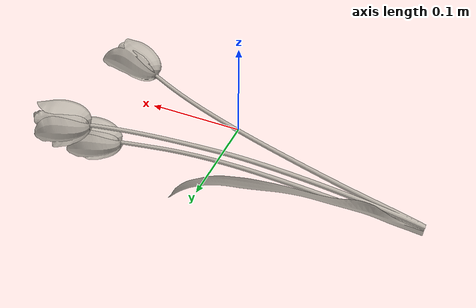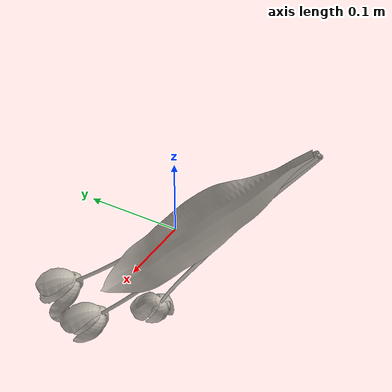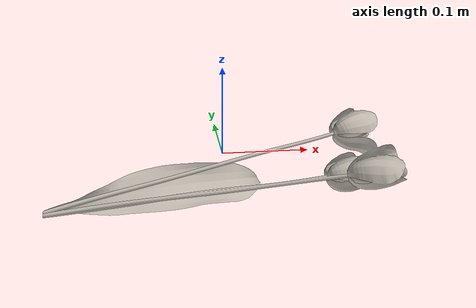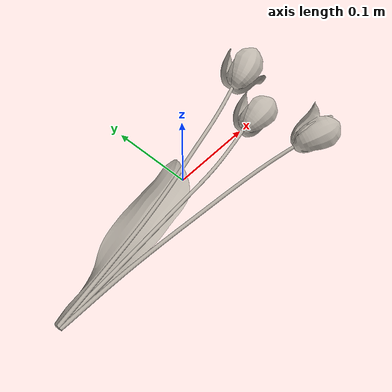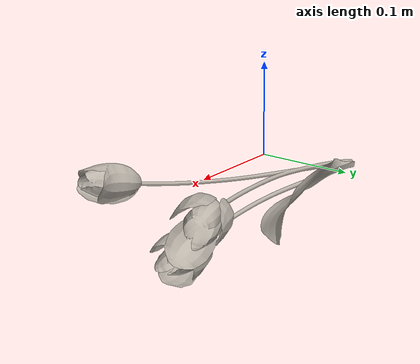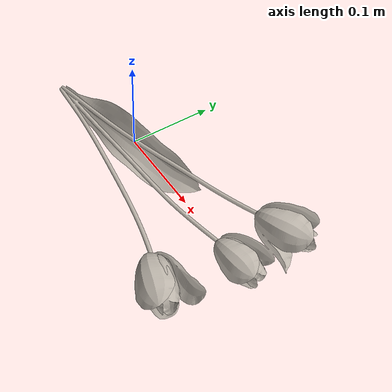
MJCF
<?xml version="1.0" ?>
<mujoco model="tulip">
	<compiler meshdir="tulip/meshes" texturedir="tulip/textures" angle="radian" autolimits="true" balanceinertia="true" boundmass="0.000001" boundinertia="0.000001"/>
	<default>
		<default class="visual">
			<geom contype="0" conaffinity="0"/>
		</default>
		<default class="collision">
			<geom rgba="1.0 0.0 0.0 0.0"/>
		</default>
	</default>
	<asset>
		<mesh name="TulipFlower002" file="obj/TulipFlower002.obj" scale="1.0 1.0 1.0"/>
		<mesh name="TulipFlower002_001" file="stl/TulipFlower002_001.stl" scale="1.0 1.0 1.0"/>
		<mesh name="TulipFlower002_002" file="stl/TulipFlower002_002.stl" scale="1.0 1.0 1.0"/>
		<mesh name="TulipFlower002_003" file="stl/TulipFlower002_003.stl" scale="1.0 1.0 1.0"/>
		<mesh name="TulipFlower002_004" file="stl/TulipFlower002_004.stl" scale="1.0 1.0 1.0"/>
		<mesh name="TulipFlower002_005" file="stl/TulipFlower002_005.stl" scale="1.0 1.0 1.0"/>
		<mesh name="TulipFlower002_006" file="stl/TulipFlower002_006.stl" scale="1.0 1.0 1.0"/>
		<mesh name="TulipFlower002_007" file="stl/TulipFlower002_007.stl" scale="1.0 1.0 1.0"/>
		<mesh name="TulipFlower002_008" file="stl/TulipFlower002_008.stl" scale="1.0 1.0 1.0"/>
		<mesh name="TulipFlower002_009" file="stl/TulipFlower002_009.stl" scale="1.0 1.0 1.0"/>
		<mesh name="TulipFlower002_010" file="stl/TulipFlower002_010.stl" scale="1.0 1.0 1.0"/>
		<mesh name="TulipFlower002_011" file="stl/TulipFlower002_011.stl" scale="1.0 1.0 1.0"/>
		<mesh name="TulipFlower002_012" file="stl/TulipFlower002_012.stl" scale="1.0 1.0 1.0"/>
		<mesh name="TulipFlower002_013" file="stl/TulipFlower002_013.stl" scale="1.0 1.0 1.0"/>
		<mesh name="TulipFlower002_014" file="stl/TulipFlower002_014.stl" scale="1.0 1.0 1.0"/>
		<mesh name="TulipFlower002_015" file="stl/TulipFlower002_015.stl" scale="1.0 1.0 1.0"/>
		<mesh name="TulipFlower002_016" file="stl/TulipFlower002_016.stl" scale="1.0 1.0 1.0"/>
		<mesh name="TulipFlower002_017" file="stl/TulipFlower002_017.stl" scale="1.0 1.0 1.0"/>
		<mesh name="TulipFlower002_018" file="stl/TulipFlower002_018.stl" scale="1.0 1.0 1.0"/>
		<mesh name="TulipFlower002_019" file="stl/TulipFlower002_019.stl" scale="1.0 1.0 1.0"/>
		<mesh name="TulipFlower002_020" file="stl/TulipFlower002_020.stl" scale="1.0 1.0 1.0"/>
		<mesh name="TulipFlower002_021" file="stl/TulipFlower002_021.stl" scale="1.0 1.0 1.0"/>
		<mesh name="TulipFlower002_022" file="stl/TulipFlower002_022.stl" scale="1.0 1.0 1.0"/>
		<mesh name="TulipFlower002_023" file="stl/TulipFlower002_023.stl" scale="1.0 1.0 1.0"/>
		<mesh name="TulipFlower002_024" file="stl/TulipFlower002_024.stl" scale="1.0 1.0 1.0"/>
		<mesh name="TulipFlower002_025" file="stl/TulipFlower002_025.stl" scale="1.0 1.0 1.0"/>
		<mesh name="TulipFlower002_026" file="stl/TulipFlower002_026.stl" scale="1.0 1.0 1.0"/>
		<mesh name="TulipFlower002_027" file="stl/TulipFlower002_027.stl" scale="1.0 1.0 1.0"/>
		<mesh name="TulipFlower002_028" file="stl/TulipFlower002_028.stl" scale="1.0 1.0 1.0"/>
		<mesh name="TulipFlower002_029" file="stl/TulipFlower002_029.stl" scale="1.0 1.0 1.0"/>
		<mesh name="TulipFlower002_030" file="stl/TulipFlower002_030.stl" scale="1.0 1.0 1.0"/>
		<mesh name="TulipFlower002_031" file="stl/TulipFlower002_031.stl" scale="1.0 1.0 1.0"/>
		<mesh name="TulipFlower002_032" file="stl/TulipFlower002_032.stl" scale="1.0 1.0 1.0"/>
		<mesh name="TulipFlower002_033" file="stl/TulipFlower002_033.stl" scale="1.0 1.0 1.0"/>
		<mesh name="TulipFlower002_034" file="stl/TulipFlower002_034.stl" scale="1.0 1.0 1.0"/>
		<mesh name="TulipFlower002_035" file="stl/TulipFlower002_035.stl" scale="1.0 1.0 1.0"/>
		<mesh name="TulipFlower002_036" file="stl/TulipFlower002_036.stl" scale="1.0 1.0 1.0"/>
		<mesh name="TulipFlower002_037" file="stl/TulipFlower002_037.stl" scale="1.0 1.0 1.0"/>
		<mesh name="TulipFlower002_038" file="stl/TulipFlower002_038.stl" scale="1.0 1.0 1.0"/>
		<mesh name="TulipFlower002_039" file="stl/TulipFlower002_039.stl" scale="1.0 1.0 1.0"/>
		<mesh name="TulipFlower002_040" file="stl/TulipFlower002_040.stl" scale="1.0 1.0 1.0"/>
		<mesh name="TulipFlower002_041" file="stl/TulipFlower002_041.stl" scale="1.0 1.0 1.0"/>
		<mesh name="TulipFlower002_042" file="stl/TulipFlower002_042.stl" scale="1.0 1.0 1.0"/>
		<mesh name="TulipFlower002_043" file="stl/TulipFlower002_043.stl" scale="1.0 1.0 1.0"/>
		<mesh name="TulipFlower002_044" file="stl/TulipFlower002_044.stl" scale="1.0 1.0 1.0"/>
		<mesh name="TulipFlower002_045" file="stl/TulipFlower002_045.stl" scale="1.0 1.0 1.0"/>
		<mesh name="TulipFlower002_046" file="stl/TulipFlower002_046.stl" scale="1.0 1.0 1.0"/>
		<mesh name="TulipFlower002_047" file="stl/TulipFlower002_047.stl" scale="1.0 1.0 1.0"/>
		<mesh name="TulipFlower002_048" file="stl/TulipFlower002_048.stl" scale="1.0 1.0 1.0"/>
		<mesh name="TulipFlower002_049" file="stl/TulipFlower002_049.stl" scale="1.0 1.0 1.0"/>
		<mesh name="TulipFlower002_050" file="stl/TulipFlower002_050.stl" scale="1.0 1.0 1.0"/>
		<mesh name="TulipFlower002_051" file="stl/TulipFlower002_051.stl" scale="1.0 1.0 1.0"/>
		<mesh name="TulipFlower002_052" file="stl/TulipFlower002_052.stl" scale="1.0 1.0 1.0"/>
		<mesh name="TulipFlower002_053" file="stl/TulipFlower002_053.stl" scale="1.0 1.0 1.0"/>
		<mesh name="TulipFlower002_054" file="stl/TulipFlower002_054.stl" scale="1.0 1.0 1.0"/>
		<mesh name="TulipFlower002_055" file="stl/TulipFlower002_055.stl" scale="1.0 1.0 1.0"/>
		<mesh name="TulipFlower002_056" file="stl/TulipFlower002_056.stl" scale="1.0 1.0 1.0"/>
		<mesh name="TulipFlower002_057" file="stl/TulipFlower002_057.stl" scale="1.0 1.0 1.0"/>
		<mesh name="TulipFlower002_058" file="stl/TulipFlower002_058.stl" scale="1.0 1.0 1.0"/>
		<mesh name="TulipStem" file="obj/TulipStem.obj" scale="1.0 1.0 1.0"/>
		<mesh name="TulipStem_001" file="stl/TulipStem_001.stl" scale="1.0 1.0 1.0"/>
		<mesh name="TulipStem_002" file="stl/TulipStem_002.stl" scale="1.0 1.0 1.0"/>
		<mesh name="TulipStem_003" file="stl/TulipStem_003.stl" scale="1.0 1.0 1.0"/>
		<mesh name="TulipStem_004" file="stl/TulipStem_004.stl" scale="1.0 1.0 1.0"/>
		<mesh name="TulipStem_005" file="stl/TulipStem_005.stl" scale="1.0 1.0 1.0"/>
		<mesh name="TulipStem_006" file="stl/TulipStem_006.stl" scale="1.0 1.0 1.0"/>
		<mesh name="TulipLeaf001" file="obj/TulipLeaf001.obj" scale="1.0 1.0 1.0"/>
		<mesh name="TulipLeaf001_001" file="stl/TulipLeaf001_001.stl" scale="1.0 1.0 1.0"/>
		<mesh name="TulipLeaf001_002" file="stl/TulipLeaf001_002.stl" scale="1.0 1.0 1.0"/>
		<mesh name="TulipLeaf001_003" file="stl/TulipLeaf001_003.stl" scale="1.0 1.0 1.0"/>
		<mesh name="TulipLeaf001_004" file="stl/TulipLeaf001_004.stl" scale="1.0 1.0 1.0"/>
		<mesh name="TulipLeaf001_005" file="stl/TulipLeaf001_005.stl" scale="1.0 1.0 1.0"/>
		<mesh name="TulipFlower001" file="obj/TulipFlower001.obj" scale="1.0 1.0 1.0"/>
		<mesh name="TulipFlower001_001" file="stl/TulipFlower001_001.stl" scale="1.0 1.0 1.0"/>
		<mesh name="TulipFlower001_002" file="stl/TulipFlower001_002.stl" scale="1.0 1.0 1.0"/>
		<mesh name="TulipFlower001_003" file="stl/TulipFlower001_003.stl" scale="1.0 1.0 1.0"/>
		<mesh name="TulipFlower001_004" file="stl/TulipFlower001_004.stl" scale="1.0 1.0 1.0"/>
		<mesh name="TulipFlower001_005" file="stl/TulipFlower001_005.stl" scale="1.0 1.0 1.0"/>
		<mesh name="TulipFlower001_006" file="stl/TulipFlower001_006.stl" scale="1.0 1.0 1.0"/>
		<mesh name="TulipFlower001_007" file="stl/TulipFlower001_007.stl" scale="1.0 1.0 1.0"/>
		<mesh name="TulipFlower001_008" file="stl/TulipFlower001_008.stl" scale="1.0 1.0 1.0"/>
		<mesh name="TulipFlower001_009" file="stl/TulipFlower001_009.stl" scale="1.0 1.0 1.0"/>
		<mesh name="TulipFlower001_010" file="stl/TulipFlower001_010.stl" scale="1.0 1.0 1.0"/>
		<mesh name="TulipFlower001_011" file="stl/TulipFlower001_011.stl" scale="1.0 1.0 1.0"/>
		<mesh name="TulipFlower001_012" file="stl/TulipFlower001_012.stl" scale="1.0 1.0 1.0"/>
		<mesh name="TulipFlower001_013" file="stl/TulipFlower001_013.stl" scale="1.0 1.0 1.0"/>
		<mesh name="TulipFlower001_014" file="stl/TulipFlower001_014.stl" scale="1.0 1.0 1.0"/>
		<mesh name="TulipFlower001_015" file="stl/TulipFlower001_015.stl" scale="1.0 1.0 1.0"/>
		<mesh name="TulipFlower001_016" file="stl/TulipFlower001_016.stl" scale="1.0 1.0 1.0"/>
		<mesh name="TulipFlower001_017" file="stl/TulipFlower001_017.stl" scale="1.0 1.0 1.0"/>
		<mesh name="TulipFlower001_018" file="stl/TulipFlower001_018.stl" scale="1.0 1.0 1.0"/>
		<mesh name="TulipFlower001_019" file="stl/TulipFlower001_019.stl" scale="1.0 1.0 1.0"/>
		<mesh name="TulipFlower001_020" file="stl/TulipFlower001_020.stl" scale="1.0 1.0 1.0"/>
		<mesh name="TulipFlower001_021" file="stl/TulipFlower001_021.stl" scale="1.0 1.0 1.0"/>
		<mesh name="TulipFlower001_022" file="stl/TulipFlower001_022.stl" scale="1.0 1.0 1.0"/>
		<mesh name="TulipFlower001_023" file="stl/TulipFlower001_023.stl" scale="1.0 1.0 1.0"/>
		<mesh name="TulipFlower001_024" file="stl/TulipFlower001_024.stl" scale="1.0 1.0 1.0"/>
		<mesh name="TulipFlower001_025" file="stl/TulipFlower001_025.stl" scale="1.0 1.0 1.0"/>
		<mesh name="TulipFlower001_026" file="stl/TulipFlower001_026.stl" scale="1.0 1.0 1.0"/>
		<mesh name="TulipFlower001_027" file="stl/TulipFlower001_027.stl" scale="1.0 1.0 1.0"/>
		<mesh name="TulipFlower001_028" file="stl/TulipFlower001_028.stl" scale="1.0 1.0 1.0"/>
		<mesh name="TulipFlower001_029" file="stl/TulipFlower001_029.stl" scale="1.0 1.0 1.0"/>
		<mesh name="TulipFlower001_030" file="stl/TulipFlower001_030.stl" scale="1.0 1.0 1.0"/>
		<mesh name="TulipFlower001_031" file="stl/TulipFlower001_031.stl" scale="1.0 1.0 1.0"/>
		<mesh name="TulipFlower001_032" file="stl/TulipFlower001_032.stl" scale="1.0 1.0 1.0"/>
		<mesh name="TulipFlower001_033" file="stl/TulipFlower001_033.stl" scale="1.0 1.0 1.0"/>
		<mesh name="TulipFlower001_034" file="stl/TulipFlower001_034.stl" scale="1.0 1.0 1.0"/>
		<mesh name="TulipFlower001_035" file="stl/TulipFlower001_035.stl" scale="1.0 1.0 1.0"/>
		<mesh name="TulipFlower001_036" file="stl/TulipFlower001_036.stl" scale="1.0 1.0 1.0"/>
		<mesh name="TulipFlower001_037" file="stl/TulipFlower001_037.stl" scale="1.0 1.0 1.0"/>
		<mesh name="TulipFlower001_038" file="stl/TulipFlower001_038.stl" scale="1.0 1.0 1.0"/>
		<mesh name="TulipFlower001_039" file="stl/TulipFlower001_039.stl" scale="1.0 1.0 1.0"/>
		<mesh name="TulipFlower001_040" file="stl/TulipFlower001_040.stl" scale="1.0 1.0 1.0"/>
		<mesh name="TulipFlower001_041" file="stl/TulipFlower001_041.stl" scale="1.0 1.0 1.0"/>
		<mesh name="TulipFlower001_042" file="stl/TulipFlower001_042.stl" scale="1.0 1.0 1.0"/>
		<mesh name="TulipFlower001_043" file="stl/TulipFlower001_043.stl" scale="1.0 1.0 1.0"/>
		<mesh name="TulipFlower001_044" file="stl/TulipFlower001_044.stl" scale="1.0 1.0 1.0"/>
		<mesh name="TulipFlower001_045" file="stl/TulipFlower001_045.stl" scale="1.0 1.0 1.0"/>
		<mesh name="TulipFlower001_046" file="stl/TulipFlower001_046.stl" scale="1.0 1.0 1.0"/>
		<mesh name="TulipFlower001_047" file="stl/TulipFlower001_047.stl" scale="1.0 1.0 1.0"/>
		<mesh name="TulipFlower001_048" file="stl/TulipFlower001_048.stl" scale="1.0 1.0 1.0"/>
		<mesh name="TulipFlower001_049" file="stl/TulipFlower001_049.stl" scale="1.0 1.0 1.0"/>
		<mesh name="TulipFlower001_050" file="stl/TulipFlower001_050.stl" scale="1.0 1.0 1.0"/>
		<mesh name="TulipFlower001_051" file="stl/TulipFlower001_051.stl" scale="1.0 1.0 1.0"/>
		<mesh name="TulipFlower001_052" file="stl/TulipFlower001_052.stl" scale="1.0 1.0 1.0"/>
		<mesh name="TulipFlower001_053" file="stl/TulipFlower001_053.stl" scale="1.0 1.0 1.0"/>
		<mesh name="TulipFlower001_054" file="stl/TulipFlower001_054.stl" scale="1.0 1.0 1.0"/>
		<mesh name="TulipFlower001_055" file="stl/TulipFlower001_055.stl" scale="1.0 1.0 1.0"/>
		<mesh name="TulipFlower001_056" file="stl/TulipFlower001_056.stl" scale="1.0 1.0 1.0"/>
		<mesh name="TulipFlower001_057" file="stl/TulipFlower001_057.stl" scale="1.0 1.0 1.0"/>
		<mesh name="TulipFlower001_058" file="stl/TulipFlower001_058.stl" scale="1.0 1.0 1.0"/>
		<mesh name="TulipFlower001_059" file="stl/TulipFlower001_059.stl" scale="1.0 1.0 1.0"/>
		<mesh name="TulipFlower001_060" file="stl/TulipFlower001_060.stl" scale="1.0 1.0 1.0"/>
		<mesh name="TulipFlower001_061" file="stl/TulipFlower001_061.stl" scale="1.0 1.0 1.0"/>
		<mesh name="TulipFlower001_062" file="stl/TulipFlower001_062.stl" scale="1.0 1.0 1.0"/>
		<mesh name="TulipFlower001_063" file="stl/TulipFlower001_063.stl" scale="1.0 1.0 1.0"/>
		<mesh name="TulipFlower001_064" file="stl/TulipFlower001_064.stl" scale="1.0 1.0 1.0"/>
		<material name="M_TulipFlower002" texture="T_TulipFlower002"/>
		<material name="M_TulipStem" texture="T_TulipStem"/>
		<material name="M_TulipLeaf001" texture="T_TulipLeaf001"/>
		<material name="M_TulipFlower001" texture="T_TulipFlower001"/>
		<texture name="T_TulipFlower002" type="2d" file="T_TulipFlower002.png"/>
		<texture name="T_TulipStem" type="2d" file="T_TulipStem.png"/>
		<texture name="T_TulipLeaf001" type="2d" file="T_TulipLeaf001.png"/>
		<texture name="T_TulipFlower001" type="2d" file="T_TulipFlower001.png"/>
	</asset>
	<worldbody>
		<body name="tulip" pos="0.0 0.0 0.0" quat="1.0 0.0 0.0 0.0">
			<body name="tulip_flower002" pos="0.0 0.0 0.0" quat="1.0 0.0 0.0 0.0">
				<inertial mass="-0.035850219428539276" pos="-0.0035837735049426556 -0.0010592726757749915 8.421168604400009e-05" quat="0.8195626735687256 -0.5482896566390991 -0.08903547376394272 0.14059945940971375" diaginertia="-1.3038647921348456e-06 1.3964859135739971e-05 1.5146362784435041e-05"/>
				<geom name="TulipFlower002" type="mesh" pos="0.0 0.0 0.0" quat="1.0 0.0 0.0 0.0" mesh="TulipFlower002" material="M_TulipFlower002" class="visual"/>
				<geom name="TulipFlower002_001" type="mesh" pos="0.0 0.0 0.0" quat="1.0 0.0 0.0 0.0" mesh="TulipFlower002_001" class="collision"/>
				<geom name="TulipFlower002_002" type="mesh" pos="0.0 0.0 0.0" quat="1.0 0.0 0.0 0.0" mesh="TulipFlower002_002" class="collision"/>
				<geom name="TulipFlower002_003" type="mesh" pos="0.0 0.0 0.0" quat="1.0 0.0 0.0 0.0" mesh="TulipFlower002_003" class="collision"/>
				<geom name="TulipFlower002_004" type="mesh" pos="0.0 0.0 0.0" quat="1.0 0.0 0.0 0.0" mesh="TulipFlower002_004" class="collision"/>
				<geom name="TulipFlower002_005" type="mesh" pos="0.0 0.0 0.0" quat="1.0 0.0 0.0 0.0" mesh="TulipFlower002_005" class="collision"/>
				<geom name="TulipFlower002_006" type="mesh" pos="0.0 0.0 0.0" quat="1.0 0.0 0.0 0.0" mesh="TulipFlower002_006" class="collision"/>
				<geom name="TulipFlower002_007" type="mesh" pos="0.0 0.0 0.0" quat="1.0 0.0 0.0 0.0" mesh="TulipFlower002_007" class="collision"/>
				<geom name="TulipFlower002_008" type="mesh" pos="0.0 0.0 0.0" quat="1.0 0.0 0.0 0.0" mesh="TulipFlower002_008" class="collision"/>
				<geom name="TulipFlower002_009" type="mesh" pos="0.0 0.0 0.0" quat="1.0 0.0 0.0 0.0" mesh="TulipFlower002_009" class="collision"/>
				<geom name="TulipFlower002_010" type="mesh" pos="0.0 0.0 0.0" quat="1.0 0.0 0.0 0.0" mesh="TulipFlower002_010" class="collision"/>
				<geom name="TulipFlower002_011" type="mesh" pos="0.0 0.0 0.0" quat="1.0 0.0 0.0 0.0" mesh="TulipFlower002_011" class="collision"/>
				<geom name="TulipFlower002_012" type="mesh" pos="0.0 0.0 0.0" quat="1.0 0.0 0.0 0.0" mesh="TulipFlower002_012" class="collision"/>
				<geom name="TulipFlower002_013" type="mesh" pos="0.0 0.0 0.0" quat="1.0 0.0 0.0 0.0" mesh="TulipFlower002_013" class="collision"/>
				<geom name="TulipFlower002_014" type="mesh" pos="0.0 0.0 0.0" quat="1.0 0.0 0.0 0.0" mesh="TulipFlower002_014" class="collision"/>
				<geom name="TulipFlower002_015" type="mesh" pos="0.0 0.0 0.0" quat="1.0 0.0 0.0 0.0" mesh="TulipFlower002_015" class="collision"/>
				<geom name="TulipFlower002_016" type="mesh" pos="0.0 0.0 0.0" quat="1.0 0.0 0.0 0.0" mesh="TulipFlower002_016" class="collision"/>
				<geom name="TulipFlower002_017" type="mesh" pos="0.0 0.0 0.0" quat="1.0 0.0 0.0 0.0" mesh="TulipFlower002_017" class="collision"/>
				<geom name="TulipFlower002_018" type="mesh" pos="0.0 0.0 0.0" quat="1.0 0.0 0.0 0.0" mesh="TulipFlower002_018" class="collision"/>
				<geom name="TulipFlower002_019" type="mesh" pos="0.0 0.0 0.0" quat="1.0 0.0 0.0 0.0" mesh="TulipFlower002_019" class="collision"/>
				<geom name="TulipFlower002_020" type="mesh" pos="0.0 0.0 0.0" quat="1.0 0.0 0.0 0.0" mesh="TulipFlower002_020" class="collision"/>
				<geom name="TulipFlower002_021" type="mesh" pos="0.0 0.0 0.0" quat="1.0 0.0 0.0 0.0" mesh="TulipFlower002_021" class="collision"/>
				<geom name="TulipFlower002_022" type="mesh" pos="0.0 0.0 0.0" quat="1.0 0.0 0.0 0.0" mesh="TulipFlower002_022" class="collision"/>
				<geom name="TulipFlower002_023" type="mesh" pos="0.0 0.0 0.0" quat="1.0 0.0 0.0 0.0" mesh="TulipFlower002_023" class="collision"/>
				<geom name="TulipFlower002_024" type="mesh" pos="0.0 0.0 0.0" quat="1.0 0.0 0.0 0.0" mesh="TulipFlower002_024" class="collision"/>
				<geom name="TulipFlower002_025" type="mesh" pos="0.0 0.0 0.0" quat="1.0 0.0 0.0 0.0" mesh="TulipFlower002_025" class="collision"/>
				<geom name="TulipFlower002_026" type="mesh" pos="0.0 0.0 0.0" quat="1.0 0.0 0.0 0.0" mesh="TulipFlower002_026" class="collision"/>
				<geom name="TulipFlower002_027" type="mesh" pos="0.0 0.0 0.0" quat="1.0 0.0 0.0 0.0" mesh="TulipFlower002_027" class="collision"/>
				<geom name="TulipFlower002_028" type="mesh" pos="0.0 0.0 0.0" quat="1.0 0.0 0.0 0.0" mesh="TulipFlower002_028" class="collision"/>
				<geom name="TulipFlower002_029" type="mesh" pos="0.0 0.0 0.0" quat="1.0 0.0 0.0 0.0" mesh="TulipFlower002_029" class="collision"/>
				<geom name="TulipFlower002_030" type="mesh" pos="0.0 0.0 0.0" quat="1.0 0.0 0.0 0.0" mesh="TulipFlower002_030" class="collision"/>
				<geom name="TulipFlower002_031" type="mesh" pos="0.0 0.0 0.0" quat="1.0 0.0 0.0 0.0" mesh="TulipFlower002_031" class="collision"/>
				<geom name="TulipFlower002_032" type="mesh" pos="0.0 0.0 0.0" quat="1.0 0.0 0.0 0.0" mesh="TulipFlower002_032" class="collision"/>
				<geom name="TulipFlower002_033" type="mesh" pos="0.0 0.0 0.0" quat="1.0 0.0 0.0 0.0" mesh="TulipFlower002_033" class="collision"/>
				<geom name="TulipFlower002_034" type="mesh" pos="0.0 0.0 0.0" quat="1.0 0.0 0.0 0.0" mesh="TulipFlower002_034" class="collision"/>
				<geom name="TulipFlower002_035" type="mesh" pos="0.0 0.0 0.0" quat="1.0 0.0 0.0 0.0" mesh="TulipFlower002_035" class="collision"/>
				<geom name="TulipFlower002_036" type="mesh" pos="0.0 0.0 0.0" quat="1.0 0.0 0.0 0.0" mesh="TulipFlower002_036" class="collision"/>
				<geom name="TulipFlower002_037" type="mesh" pos="0.0 0.0 0.0" quat="1.0 0.0 0.0 0.0" mesh="TulipFlower002_037" class="collision"/>
				<geom name="TulipFlower002_038" type="mesh" pos="0.0 0.0 0.0" quat="1.0 0.0 0.0 0.0" mesh="TulipFlower002_038" class="collision"/>
				<geom name="TulipFlower002_039" type="mesh" pos="0.0 0.0 0.0" quat="1.0 0.0 0.0 0.0" mesh="TulipFlower002_039" class="collision"/>
				<geom name="TulipFlower002_040" type="mesh" pos="0.0 0.0 0.0" quat="1.0 0.0 0.0 0.0" mesh="TulipFlower002_040" class="collision"/>
				<geom name="TulipFlower002_041" type="mesh" pos="0.0 0.0 0.0" quat="1.0 0.0 0.0 0.0" mesh="TulipFlower002_041" class="collision"/>
				<geom name="TulipFlower002_042" type="mesh" pos="0.0 0.0 0.0" quat="1.0 0.0 0.0 0.0" mesh="TulipFlower002_042" class="collision"/>
				<geom name="TulipFlower002_043" type="mesh" pos="0.0 0.0 0.0" quat="1.0 0.0 0.0 0.0" mesh="TulipFlower002_043" class="collision"/>
				<geom name="TulipFlower002_044" type="mesh" pos="0.0 0.0 0.0" quat="1.0 0.0 0.0 0.0" mesh="TulipFlower002_044" class="collision"/>
				<geom name="TulipFlower002_045" type="mesh" pos="0.0 0.0 0.0" quat="1.0 0.0 0.0 0.0" mesh="TulipFlower002_045" class="collision"/>
				<geom name="TulipFlower002_046" type="mesh" pos="0.0 0.0 0.0" quat="1.0 0.0 0.0 0.0" mesh="TulipFlower002_046" class="collision"/>
				<geom name="TulipFlower002_047" type="mesh" pos="0.0 0.0 0.0" quat="1.0 0.0 0.0 0.0" mesh="TulipFlower002_047" class="collision"/>
				<geom name="TulipFlower002_048" type="mesh" pos="0.0 0.0 0.0" quat="1.0 0.0 0.0 0.0" mesh="TulipFlower002_048" class="collision"/>
				<geom name="TulipFlower002_049" type="mesh" pos="0.0 0.0 0.0" quat="1.0 0.0 0.0 0.0" mesh="TulipFlower002_049" class="collision"/>
				<geom name="TulipFlower002_050" type="mesh" pos="0.0 0.0 0.0" quat="1.0 0.0 0.0 0.0" mesh="TulipFlower002_050" class="collision"/>
				<geom name="TulipFlower002_051" type="mesh" pos="0.0 0.0 0.0" quat="1.0 0.0 0.0 0.0" mesh="TulipFlower002_051" class="collision"/>
				<geom name="TulipFlower002_052" type="mesh" pos="0.0 0.0 0.0" quat="1.0 0.0 0.0 0.0" mesh="TulipFlower002_052" class="collision"/>
				<geom name="TulipFlower002_053" type="mesh" pos="0.0 0.0 0.0" quat="1.0 0.0 0.0 0.0" mesh="TulipFlower002_053" class="collision"/>
				<geom name="TulipFlower002_054" type="mesh" pos="0.0 0.0 0.0" quat="1.0 0.0 0.0 0.0" mesh="TulipFlower002_054" class="collision"/>
				<geom name="TulipFlower002_055" type="mesh" pos="0.0 0.0 0.0" quat="1.0 0.0 0.0 0.0" mesh="TulipFlower002_055" class="collision"/>
				<geom name="TulipFlower002_056" type="mesh" pos="0.0 0.0 0.0" quat="1.0 0.0 0.0 0.0" mesh="TulipFlower002_056" class="collision"/>
				<geom name="TulipFlower002_057" type="mesh" pos="0.0 0.0 0.0" quat="1.0 0.0 0.0 0.0" mesh="TulipFlower002_057" class="collision"/>
				<geom name="TulipFlower002_058" type="mesh" pos="0.0 0.0 0.0" quat="1.0 0.0 0.0 0.0" mesh="TulipFlower002_058" class="collision"/>
			</body>
			<body name="tulip_leaf001" pos="0.0 0.0 0.0" quat="1.0 0.0 0.0 0.0">
				<inertial mass="-0.0677194744348526" pos="0.0025559908244758844 -0.001022760639898479 0.002715975744649768" quat="0.8261045217514038 -0.48916566371917725 -0.19893160462379456 -0.19670909643173218" diaginertia="5.152208359504584e-06 2.1266141629894264e-05 2.541234607633669e-05"/>
				<geom name="TulipLeaf001" type="mesh" pos="0.0 0.0 0.0" quat="1.0 0.0 0.0 0.0" mesh="TulipLeaf001" material="M_TulipLeaf001" class="visual"/>
				<geom name="TulipLeaf001_001" type="mesh" pos="0.0 0.0 0.0" quat="1.0 0.0 0.0 0.0" mesh="TulipLeaf001_001" class="collision"/>
				<geom name="TulipLeaf001_002" type="mesh" pos="0.0 0.0 0.0" quat="1.0 0.0 0.0 0.0" mesh="TulipLeaf001_002" class="collision"/>
				<geom name="TulipLeaf001_003" type="mesh" pos="0.0 0.0 0.0" quat="1.0 0.0 0.0 0.0" mesh="TulipLeaf001_003" class="collision"/>
				<geom name="TulipLeaf001_004" type="mesh" pos="0.0 0.0 0.0" quat="1.0 0.0 0.0 0.0" mesh="TulipLeaf001_004" class="collision"/>
				<geom name="TulipLeaf001_005" type="mesh" pos="0.0 0.0 0.0" quat="1.0 0.0 0.0 0.0" mesh="TulipLeaf001_005" class="collision"/>
			</body>
			<body name="tulip_stem" pos="0.0 0.0 0.0" quat="1.0 0.0 0.0 0.0">
				<inertial mass="0.00402587465941906" pos="-0.041350290179252625 -0.0015953591791912913 -0.04113459959626198" quat="0.7035735845565796 0.6964631080627441 -0.08602717518806458 0.11190463602542877" diaginertia="6.442447556764819e-06 5.2896000852342695e-05 5.546389002120122e-05"/>
				<geom name="TulipStem" type="mesh" pos="0.0 0.0 0.0" quat="1.0 0.0 0.0 0.0" mesh="TulipStem" material="M_TulipStem" class="visual"/>
				<geom name="TulipStem_001" type="mesh" pos="0.0 0.0 0.0" quat="1.0 0.0 0.0 0.0" mesh="TulipStem_001" class="collision"/>
				<geom name="TulipStem_002" type="mesh" pos="0.0 0.0 0.0" quat="1.0 0.0 0.0 0.0" mesh="TulipStem_002" class="collision"/>
				<geom name="TulipStem_003" type="mesh" pos="0.0 0.0 0.0" quat="1.0 0.0 0.0 0.0" mesh="TulipStem_003" class="collision"/>
				<geom name="TulipStem_004" type="mesh" pos="0.0 0.0 0.0" quat="1.0 0.0 0.0 0.0" mesh="TulipStem_004" class="collision"/>
				<geom name="TulipStem_005" type="mesh" pos="0.0 0.0 0.0" quat="1.0 0.0 0.0 0.0" mesh="TulipStem_005" class="collision"/>
				<geom name="TulipStem_006" type="mesh" pos="0.0 0.0 0.0" quat="1.0 0.0 0.0 0.0" mesh="TulipStem_006" class="collision"/>
			</body>
			<body name="tulip_flower001" pos="0.0 0.0 0.0" quat="1.0 0.0 0.0 0.0">
				<inertial mass="0.006754143163561821" pos="0.2621709406375885 -0.016075752675533295 -0.036139022558927536" quat="0.9944955110549927 -0.08412578701972961 0.062412526458501816 -0.002497471868991852" diaginertia="5.074209184385836e-05 0.00036684409133158624 0.0004044266534037888"/>
				<geom name="TulipFlower001" type="mesh" pos="0.0 0.0 0.0" quat="1.0 0.0 0.0 0.0" mesh="TulipFlower001" material="M_TulipFlower001" class="visual"/>
				<geom name="TulipFlower001_001" type="mesh" pos="0.0 0.0 0.0" quat="1.0 0.0 0.0 0.0" mesh="TulipFlower001_001" class="collision"/>
				<geom name="TulipFlower001_002" type="mesh" pos="0.0 0.0 0.0" quat="1.0 0.0 0.0 0.0" mesh="TulipFlower001_002" class="collision"/>
				<geom name="TulipFlower001_003" type="mesh" pos="0.0 0.0 0.0" quat="1.0 0.0 0.0 0.0" mesh="TulipFlower001_003" class="collision"/>
				<geom name="TulipFlower001_004" type="mesh" pos="0.0 0.0 0.0" quat="1.0 0.0 0.0 0.0" mesh="TulipFlower001_004" class="collision"/>
				<geom name="TulipFlower001_005" type="mesh" pos="0.0 0.0 0.0" quat="1.0 0.0 0.0 0.0" mesh="TulipFlower001_005" class="collision"/>
				<geom name="TulipFlower001_006" type="mesh" pos="0.0 0.0 0.0" quat="1.0 0.0 0.0 0.0" mesh="TulipFlower001_006" class="collision"/>
				<geom name="TulipFlower001_007" type="mesh" pos="0.0 0.0 0.0" quat="1.0 0.0 0.0 0.0" mesh="TulipFlower001_007" class="collision"/>
				<geom name="TulipFlower001_008" type="mesh" pos="0.0 0.0 0.0" quat="1.0 0.0 0.0 0.0" mesh="TulipFlower001_008" class="collision"/>
				<geom name="TulipFlower001_009" type="mesh" pos="0.0 0.0 0.0" quat="1.0 0.0 0.0 0.0" mesh="TulipFlower001_009" class="collision"/>
				<geom name="TulipFlower001_010" type="mesh" pos="0.0 0.0 0.0" quat="1.0 0.0 0.0 0.0" mesh="TulipFlower001_010" class="collision"/>
				<geom name="TulipFlower001_011" type="mesh" pos="0.0 0.0 0.0" quat="1.0 0.0 0.0 0.0" mesh="TulipFlower001_011" class="collision"/>
				<geom name="TulipFlower001_012" type="mesh" pos="0.0 0.0 0.0" quat="1.0 0.0 0.0 0.0" mesh="TulipFlower001_012" class="collision"/>
				<geom name="TulipFlower001_013" type="mesh" pos="0.0 0.0 0.0" quat="1.0 0.0 0.0 0.0" mesh="TulipFlower001_013" class="collision"/>
				<geom name="TulipFlower001_014" type="mesh" pos="0.0 0.0 0.0" quat="1.0 0.0 0.0 0.0" mesh="TulipFlower001_014" class="collision"/>
				<geom name="TulipFlower001_015" type="mesh" pos="0.0 0.0 0.0" quat="1.0 0.0 0.0 0.0" mesh="TulipFlower001_015" class="collision"/>
				<geom name="TulipFlower001_016" type="mesh" pos="0.0 0.0 0.0" quat="1.0 0.0 0.0 0.0" mesh="TulipFlower001_016" class="collision"/>
				<geom name="TulipFlower001_017" type="mesh" pos="0.0 0.0 0.0" quat="1.0 0.0 0.0 0.0" mesh="TulipFlower001_017" class="collision"/>
				<geom name="TulipFlower001_018" type="mesh" pos="0.0 0.0 0.0" quat="1.0 0.0 0.0 0.0" mesh="TulipFlower001_018" class="collision"/>
				<geom name="TulipFlower001_019" type="mesh" pos="0.0 0.0 0.0" quat="1.0 0.0 0.0 0.0" mesh="TulipFlower001_019" class="collision"/>
				<geom name="TulipFlower001_020" type="mesh" pos="0.0 0.0 0.0" quat="1.0 0.0 0.0 0.0" mesh="TulipFlower001_020" class="collision"/>
				<geom name="TulipFlower001_021" type="mesh" pos="0.0 0.0 0.0" quat="1.0 0.0 0.0 0.0" mesh="TulipFlower001_021" class="collision"/>
				<geom name="TulipFlower001_022" type="mesh" pos="0.0 0.0 0.0" quat="1.0 0.0 0.0 0.0" mesh="TulipFlower001_022" class="collision"/>
				<geom name="TulipFlower001_023" type="mesh" pos="0.0 0.0 0.0" quat="1.0 0.0 0.0 0.0" mesh="TulipFlower001_023" class="collision"/>
				<geom name="TulipFlower001_024" type="mesh" pos="0.0 0.0 0.0" quat="1.0 0.0 0.0 0.0" mesh="TulipFlower001_024" class="collision"/>
				<geom name="TulipFlower001_025" type="mesh" pos="0.0 0.0 0.0" quat="1.0 0.0 0.0 0.0" mesh="TulipFlower001_025" class="collision"/>
				<geom name="TulipFlower001_026" type="mesh" pos="0.0 0.0 0.0" quat="1.0 0.0 0.0 0.0" mesh="TulipFlower001_026" class="collision"/>
				<geom name="TulipFlower001_027" type="mesh" pos="0.0 0.0 0.0" quat="1.0 0.0 0.0 0.0" mesh="TulipFlower001_027" class="collision"/>
				<geom name="TulipFlower001_028" type="mesh" pos="0.0 0.0 0.0" quat="1.0 0.0 0.0 0.0" mesh="TulipFlower001_028" class="collision"/>
				<geom name="TulipFlower001_029" type="mesh" pos="0.0 0.0 0.0" quat="1.0 0.0 0.0 0.0" mesh="TulipFlower001_029" class="collision"/>
				<geom name="TulipFlower001_030" type="mesh" pos="0.0 0.0 0.0" quat="1.0 0.0 0.0 0.0" mesh="TulipFlower001_030" class="collision"/>
				<geom name="TulipFlower001_031" type="mesh" pos="0.0 0.0 0.0" quat="1.0 0.0 0.0 0.0" mesh="TulipFlower001_031" class="collision"/>
				<geom name="TulipFlower001_032" type="mesh" pos="0.0 0.0 0.0" quat="1.0 0.0 0.0 0.0" mesh="TulipFlower001_032" class="collision"/>
				<geom name="TulipFlower001_033" type="mesh" pos="0.0 0.0 0.0" quat="1.0 0.0 0.0 0.0" mesh="TulipFlower001_033" class="collision"/>
				<geom name="TulipFlower001_034" type="mesh" pos="0.0 0.0 0.0" quat="1.0 0.0 0.0 0.0" mesh="TulipFlower001_034" class="collision"/>
				<geom name="TulipFlower001_035" type="mesh" pos="0.0 0.0 0.0" quat="1.0 0.0 0.0 0.0" mesh="TulipFlower001_035" class="collision"/>
				<geom name="TulipFlower001_036" type="mesh" pos="0.0 0.0 0.0" quat="1.0 0.0 0.0 0.0" mesh="TulipFlower001_036" class="collision"/>
				<geom name="TulipFlower001_037" type="mesh" pos="0.0 0.0 0.0" quat="1.0 0.0 0.0 0.0" mesh="TulipFlower001_037" class="collision"/>
				<geom name="TulipFlower001_038" type="mesh" pos="0.0 0.0 0.0" quat="1.0 0.0 0.0 0.0" mesh="TulipFlower001_038" class="collision"/>
				<geom name="TulipFlower001_039" type="mesh" pos="0.0 0.0 0.0" quat="1.0 0.0 0.0 0.0" mesh="TulipFlower001_039" class="collision"/>
				<geom name="TulipFlower001_040" type="mesh" pos="0.0 0.0 0.0" quat="1.0 0.0 0.0 0.0" mesh="TulipFlower001_040" class="collision"/>
				<geom name="TulipFlower001_041" type="mesh" pos="0.0 0.0 0.0" quat="1.0 0.0 0.0 0.0" mesh="TulipFlower001_041" class="collision"/>
				<geom name="TulipFlower001_042" type="mesh" pos="0.0 0.0 0.0" quat="1.0 0.0 0.0 0.0" mesh="TulipFlower001_042" class="collision"/>
				<geom name="TulipFlower001_043" type="mesh" pos="0.0 0.0 0.0" quat="1.0 0.0 0.0 0.0" mesh="TulipFlower001_043" class="collision"/>
				<geom name="TulipFlower001_044" type="mesh" pos="0.0 0.0 0.0" quat="1.0 0.0 0.0 0.0" mesh="TulipFlower001_044" class="collision"/>
				<geom name="TulipFlower001_045" type="mesh" pos="0.0 0.0 0.0" quat="1.0 0.0 0.0 0.0" mesh="TulipFlower001_045" class="collision"/>
				<geom name="TulipFlower001_046" type="mesh" pos="0.0 0.0 0.0" quat="1.0 0.0 0.0 0.0" mesh="TulipFlower001_046" class="collision"/>
				<geom name="TulipFlower001_047" type="mesh" pos="0.0 0.0 0.0" quat="1.0 0.0 0.0 0.0" mesh="TulipFlower001_047" class="collision"/>
				<geom name="TulipFlower001_048" type="mesh" pos="0.0 0.0 0.0" quat="1.0 0.0 0.0 0.0" mesh="TulipFlower001_048" class="collision"/>
				<geom name="TulipFlower001_049" type="mesh" pos="0.0 0.0 0.0" quat="1.0 0.0 0.0 0.0" mesh="TulipFlower001_049" class="collision"/>
				<geom name="TulipFlower001_050" type="mesh" pos="0.0 0.0 0.0" quat="1.0 0.0 0.0 0.0" mesh="TulipFlower001_050" class="collision"/>
				<geom name="TulipFlower001_051" type="mesh" pos="0.0 0.0 0.0" quat="1.0 0.0 0.0 0.0" mesh="TulipFlower001_051" class="collision"/>
				<geom name="TulipFlower001_052" type="mesh" pos="0.0 0.0 0.0" quat="1.0 0.0 0.0 0.0" mesh="TulipFlower001_052" class="collision"/>
				<geom name="TulipFlower001_053" type="mesh" pos="0.0 0.0 0.0" quat="1.0 0.0 0.0 0.0" mesh="TulipFlower001_053" class="collision"/>
				<geom name="TulipFlower001_054" type="mesh" pos="0.0 0.0 0.0" quat="1.0 0.0 0.0 0.0" mesh="TulipFlower001_054" class="collision"/>
				<geom name="TulipFlower001_055" type="mesh" pos="0.0 0.0 0.0" quat="1.0 0.0 0.0 0.0" mesh="TulipFlower001_055" class="collision"/>
				<geom name="TulipFlower001_056" type="mesh" pos="0.0 0.0 0.0" quat="1.0 0.0 0.0 0.0" mesh="TulipFlower001_056" class="collision"/>
				<geom name="TulipFlower001_057" type="mesh" pos="0.0 0.0 0.0" quat="1.0 0.0 0.0 0.0" mesh="TulipFlower001_057" class="collision"/>
				<geom name="TulipFlower001_058" type="mesh" pos="0.0 0.0 0.0" quat="1.0 0.0 0.0 0.0" mesh="TulipFlower001_058" class="collision"/>
				<geom name="TulipFlower001_059" type="mesh" pos="0.0 0.0 0.0" quat="1.0 0.0 0.0 0.0" mesh="TulipFlower001_059" class="collision"/>
				<geom name="TulipFlower001_060" type="mesh" pos="0.0 0.0 0.0" quat="1.0 0.0 0.0 0.0" mesh="TulipFlower001_060" class="collision"/>
				<geom name="TulipFlower001_061" type="mesh" pos="0.0 0.0 0.0" quat="1.0 0.0 0.0 0.0" mesh="TulipFlower001_061" class="collision"/>
				<geom name="TulipFlower001_062" type="mesh" pos="0.0 0.0 0.0" quat="1.0 0.0 0.0 0.0" mesh="TulipFlower001_062" class="collision"/>
				<geom name="TulipFlower001_063" type="mesh" pos="0.0 0.0 0.0" quat="1.0 0.0 0.0 0.0" mesh="TulipFlower001_063" class="collision"/>
				<geom name="TulipFlower001_064" type="mesh" pos="0.0 0.0 0.0" quat="1.0 0.0 0.0 0.0" mesh="TulipFlower001_064" class="collision"/>
			</body>
		</body>
	</worldbody>
	<equality/>
</mujoco>
